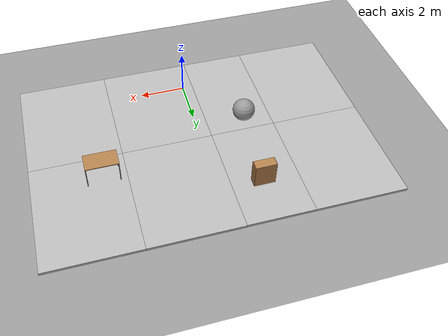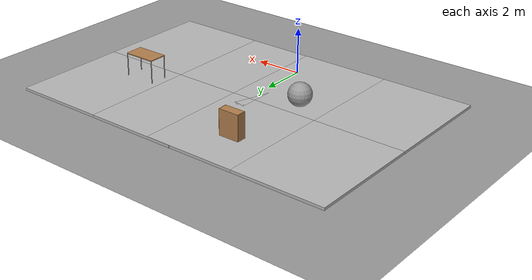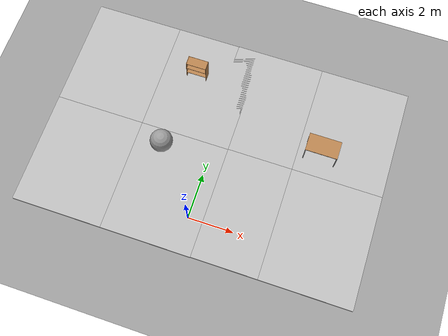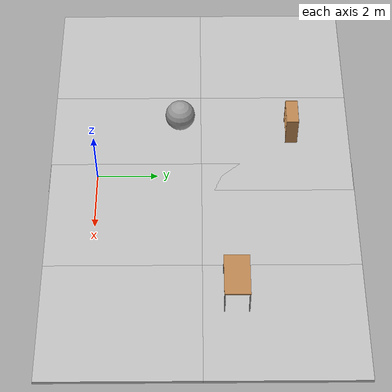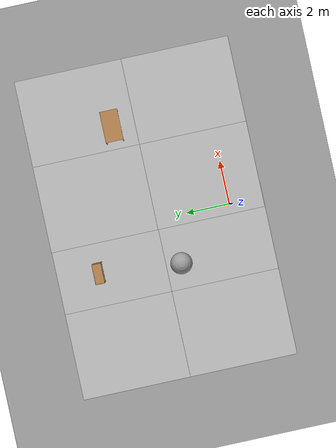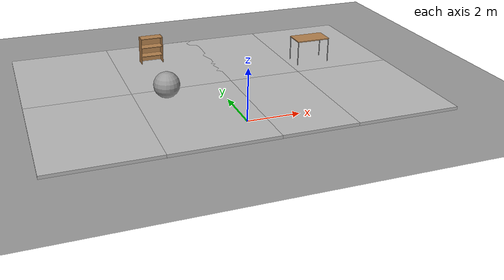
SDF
<sdf version="1.6">
 <world name="default">
  <model name="ground_plane_0">
   <static>1</static>
   <link name="link">
    <collision name="collision">
     <geometry><plane><normal>0 0 1</normal><size>100 100</size></plane></geometry>
     <surface><friction><ode><mu>100</mu><mu2>50</mu2></ode></friction></surface>
    </collision>
    <visual name="visual">
     <cast_shadows>0</cast_shadows>
     <geometry><plane><normal>0 0 1</normal><size>100 100</size></plane></geometry>
     <material>
      <script><uri>file://media/materials/scripts/gazebo.material</uri><name>Gazebo/Grey</name></script>
     </material>
    </visual>
    <velocity_decay><linear>0</linear><angular>0</angular></velocity_decay>
   </link>
   <pose>0.497681 0 0 0 -0 0</pose>
  </model>
  <model name="mud_box_8">
   <static>1</static>
   <link name="link">
    <collision name="collision"><geometry><box><size>8 10 0.2</size></box></geometry></collision>
    <visual name="visual_1">
     <pose>-2 2.5 0 0 -0 0</pose>
     <cast_shadows>0</cast_shadows>
     <geometry><box><size>4 5 0.2</size></box></geometry>
     <material>
      <script>
       <uri>model://mud_box/materials/scripts</uri>
       <uri>model://mud_box/materials/textures</uri>
       <name>vrc/mud</name>
      </script>
     </material>
    </visual>
    <visual name="visual_2">
     <pose>2 2.5 0 0 -0 0</pose>
     <cast_shadows>0</cast_shadows>
     <geometry><box><size>4 5 0.2</size></box></geometry>
     <material>
      <script>
       <uri>model://mud_box/materials/scripts</uri>
       <uri>model://mud_box/materials/textures</uri>
       <name>vrc/mud</name>
      </script>
     </material>
    </visual>
    <visual name="visual_3">
     <pose>2 -2.5 0 0 -0 0</pose>
     <cast_shadows>0</cast_shadows>
     <geometry><box><size>4 5 0.2</size></box></geometry>
     <material>
      <script>
       <uri>model://mud_box/materials/scripts</uri>
       <uri>model://mud_box/materials/textures</uri>
       <name>vrc/mud</name>
      </script>
     </material>
    </visual>
    <visual name="visual_4">
     <pose>-2 -2.5 0 0 -0 0</pose>
     <cast_shadows>0</cast_shadows>
     <geometry><box><size>4 5 0.2</size></box></geometry>
     <material>
      <script>
       <uri>model://mud_box/materials/scripts</uri>
       <uri>model://mud_box/materials/textures</uri>
       <name>vrc/mud</name>
      </script>
     </material>
    </visual>
   </link>
   <pose>3.55507 3.4482 0 0 -0 0</pose>
  </model>
  <model name="mud_box_9">
   <static>1</static>
   <link name="link">
    <collision name="collision"><geometry><box><size>8 10 0.2</size></box></geometry></collision>
    <visual name="visual_1">
     <pose>-2 2.5 0 0 -0 0</pose>
     <cast_shadows>0</cast_shadows>
     <geometry><box><size>4 5 0.2</size></box></geometry>
     <material>
      <script>
       <uri>model://mud_box/materials/scripts</uri>
       <uri>model://mud_box/materials/textures</uri>
       <name>vrc/mud</name>
      </script>
     </material>
    </visual>
    <visual name="visual_2">
     <pose>2 2.5 0 0 -0 0</pose>
     <cast_shadows>0</cast_shadows>
     <geometry><box><size>4 5 0.2</size></box></geometry>
     <material>
      <script>
       <uri>model://mud_box/materials/scripts</uri>
       <uri>model://mud_box/materials/textures</uri>
       <name>vrc/mud</name>
      </script>
     </material>
    </visual>
    <visual name="visual_3">
     <pose>2 -2.5 0 0 -0 0</pose>
     <cast_shadows>0</cast_shadows>
     <geometry><box><size>4 5 0.2</size></box></geometry>
     <material>
      <script>
       <uri>model://mud_box/materials/scripts</uri>
       <uri>model://mud_box/materials/textures</uri>
       <name>vrc/mud</name>
      </script>
     </material>
    </visual>
    <visual name="visual_4">
     <pose>-2 -2.5 0 0 -0 0</pose>
     <cast_shadows>0</cast_shadows>
     <geometry><box><size>4 5 0.2</size></box></geometry>
     <material>
      <script>
       <uri>model://mud_box/materials/scripts</uri>
       <uri>model://mud_box/materials/textures</uri>
       <name>vrc/mud</name>
      </script>
     </material>
    </visual>
   </link>
   <pose>-3.34382 3.43514 0 0 -0 0</pose>
  </model>
  <model name="table">
   <static>0</static>
   <link name="link">
    <collision name="surface">
     <pose>0 0 1 0 -0 0</pose>
     <geometry><box><size>1.5 0.8 0.03</size></box></geometry>
     <surface><friction><ode><mu>0.6</mu><mu2>0.6</mu2></ode></friction></surface>
    </collision>
    <visual name="visual1">
     <pose>0 0 1 0 -0 0</pose>
     <geometry><box><size>1.4 0.8 0.04</size></box></geometry>
     <material>
      <script><uri>file://media/materials/scripts/gazebo.material</uri><name>Gazebo/Wood</name></script>
     </material>
    </visual>
    <collision name="front_left_leg">
     <pose>0.68 0.38 0.5 0 -0 0</pose>
     <geometry><cylinder><radius>0.02</radius><length>1</length></cylinder></geometry>
    </collision>
    <visual name="front_left_leg">
     <pose>0.68 0.38 0.5 0 -0 0</pose>
     <geometry><cylinder><radius>0.02</radius><length>1</length></cylinder></geometry>
     <material>
      <script><uri>file://media/materials/scripts/gazebo.material</uri><name>Gazebo/Grey</name></script>
     </material>
    </visual>
    <collision name="front_right_leg">
     <pose>0.68 -0.38 0.5 0 -0 0</pose>
     <geometry><cylinder><radius>0.02</radius><length>1</length></cylinder></geometry>
    </collision>
    <visual name="front_right_leg">
     <pose>0.68 -0.38 0.5 0 -0 0</pose>
     <geometry><cylinder><radius>0.02</radius><length>1</length></cylinder></geometry>
     <material>
      <script><uri>file://media/materials/scripts/gazebo.material</uri><name>Gazebo/Grey</name></script>
     </material>
    </visual>
    <collision name="back_right_leg">
     <pose>-0.68 -0.38 0.5 0 -0 0</pose>
     <geometry><cylinder><radius>0.02</radius><length>1</length></cylinder></geometry>
    </collision>
    <visual name="back_right_leg">
     <pose>-0.68 -0.38 0.5 0 -0 0</pose>
     <geometry><cylinder><radius>0.02</radius><length>1</length></cylinder></geometry>
     <material>
      <script><uri>file://media/materials/scripts/gazebo.material</uri><name>Gazebo/Grey</name></script>
     </material>
    </visual>
    <collision name="back_left_leg">
     <pose>-0.68 0.38 0.5 0 -0 0</pose>
     <geometry><cylinder><radius>0.02</radius><length>1</length></cylinder></geometry>
    </collision>
    <visual name="back_left_leg">
     <pose>-0.68 0.38 0.5 0 -0 0</pose>
     <geometry><cylinder><radius>0.02</radius><length>1</length></cylinder></geometry>
     <material>
      <script><uri>file://media/materials/scripts/gazebo.material</uri><name>Gazebo/Grey</name></script>
     </material>
    </visual>
    <inertial>
     <inertia><ixx>1</ixx><ixy>0</ixy><ixz>0</ixz><iyy>1</iyy><iyz>0</iyz><izz>1</izz></inertia>
     <mass>1</mass>
    </inertial>
   </link>
   <pose>4.53609 4.49208 0.099675 -0.000201 0.000379 0</pose>
  </model>
  <model name="bookshelf">
   <static>1</static>
   <link name="link">
    <inertial><mass>1</mass></inertial>
    <collision name="back">
     <pose>0 0.005 0.6 0 -0 0</pose>
     <geometry><box><size>0.9 0.01 1.2</size></box></geometry>
    </collision>
    <visual name="visual1">
     <pose>0 0.005 0.6 0 -0 0</pose>
     <geometry><box><size>0.9 0.01 1.2</size></box></geometry>
     <material>
      <script><uri>file://media/materials/scripts/gazebo.material</uri><name>Gazebo/Wood</name></script>
     </material>
    </visual>
    <collision name="left_side">
     <pose>0.45 -0.195 0.6 0 -0 0</pose>
     <geometry><box><size>0.02 0.4 1.2</size></box></geometry>
    </collision>
    <visual name="visual2">
     <pose>0.45 -0.195 0.6 0 -0 0</pose>
     <geometry><box><size>0.02 0.4 1.2</size></box></geometry>
     <material>
      <script><uri>file://media/materials/scripts/gazebo.material</uri><name>Gazebo/Wood</name></script>
     </material>
    </visual>
    <collision name="right_side">
     <pose>-0.45 -0.195 0.6 0 -0 0</pose>
     <geometry><box><size>0.02 0.4 1.2</size></box></geometry>
    </collision>
    <visual name="visual3">
     <pose>-0.45 -0.195 0.6 0 -0 0</pose>
     <geometry><box><size>0.02 0.4 1.2</size></box></geometry>
     <material>
      <script><uri>file://media/materials/scripts/gazebo.material</uri><name>Gazebo/Wood</name></script>
     </material>
    </visual>
    <collision name="bottom">
     <pose>0 -0.195 0.03 0 -0 0</pose>
     <geometry><box><size>0.88 0.4 0.06</size></box></geometry>
    </collision>
    <visual name="visual4">
     <pose>0 -0.195 0.03 0 -0 0</pose>
     <geometry><box><size>0.88 0.4 0.06</size></box></geometry>
     <material>
      <script><uri>file://media/materials/scripts/gazebo.material</uri><name>Gazebo/Wood</name></script>
     </material>
    </visual>
    <collision name="top">
     <pose>0 -0.195 1.19 0 -0 0</pose>
     <geometry><box><size>0.88 0.4 0.02</size></box></geometry>
    </collision>
    <visual name="visual5">
     <pose>0 -0.195 1.19 0 -0 0</pose>
     <geometry><box><size>0.88 0.4 0.02</size></box></geometry>
     <material>
      <script><uri>file://media/materials/scripts/gazebo.material</uri><name>Gazebo/Wood</name></script>
     </material>
    </visual>
    <collision name="low_shelf">
     <pose>0 -0.195 0.43 0 -0 0</pose>
     <geometry><box><size>0.88 0.4 0.02</size></box></geometry>
    </collision>
    <visual name="visual6">
     <pose>0 -0.195 0.43 0 -0 0</pose>
     <geometry><box><size>0.88 0.4 0.02</size></box></geometry>
     <material>
      <script><uri>file://media/materials/scripts/gazebo.material</uri><name>Gazebo/Wood</name></script>
     </material>
    </visual>
    <collision name="high_shelf">
     <pose>0 -0.195 0.8 0 -0 0</pose>
     <geometry><box><size>0.88 0.4 0.02</size></box></geometry>
    </collision>
    <visual name="visual7">
     <pose>0 -0.195 0.8 0 -0 0</pose>
     <geometry><box><size>0.88 0.4 0.02</size></box></geometry>
     <material>
      <script><uri>file://media/materials/scripts/gazebo.material</uri><name>Gazebo/Wood</name></script>
     </material>
    </visual>
   </link>
   <pose>-1.78801 6.66854 0 0 -0 0</pose>
  </model>
  <model name="unit_sphere_0">
   <pose>-2.14672 2.73634 0.6 0 -0 0</pose>
   <link name="link">
    <inertial>
     <mass>1</mass>
     <inertia><ixx>0.1</ixx><ixy>0</ixy><ixz>0</ixz><iyy>0.1</iyy><iyz>0</iyz><izz>0.1</izz></inertia>
    </inertial>
    <collision name="collision"><geometry><sphere><radius>0.5</radius></sphere></geometry></collision>
    <visual name="visual">
     <geometry><sphere><radius>0.5</radius></sphere></geometry>
     <material>
      <script><name>Gazebo/Grey</name><uri>file://media/materials/scripts/gazebo.material</uri></script>
     </material>
    </visual>
   </link>
  </model>
 </world>
</sdf>
